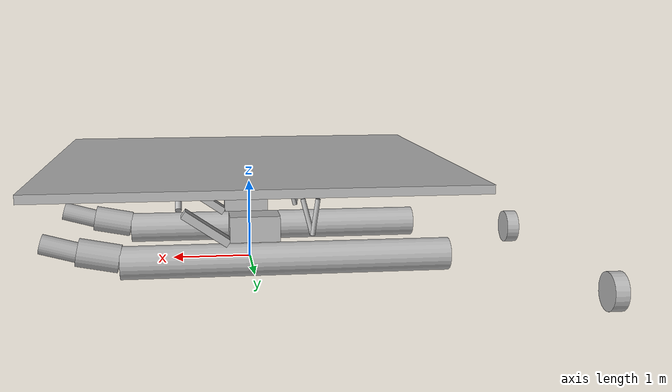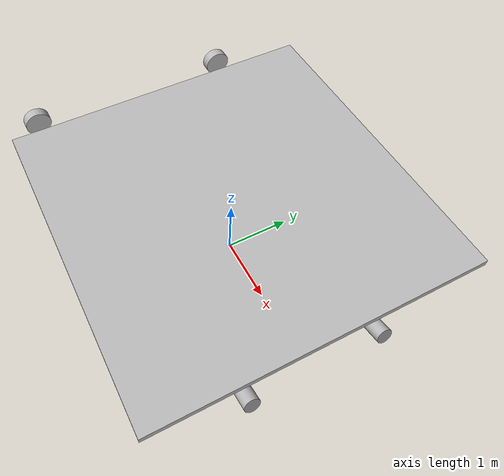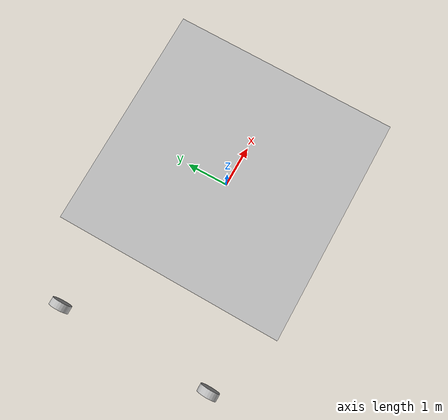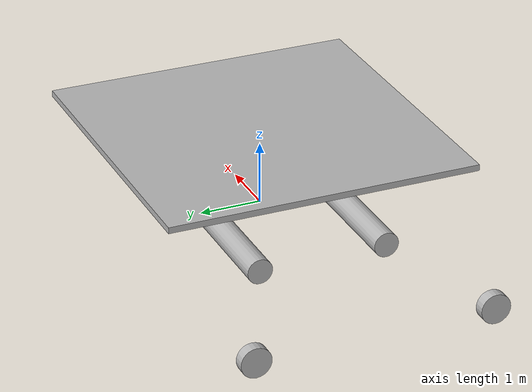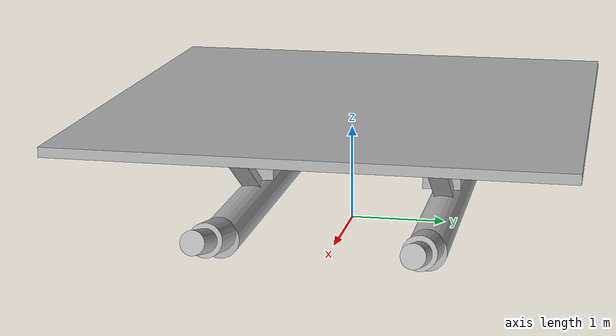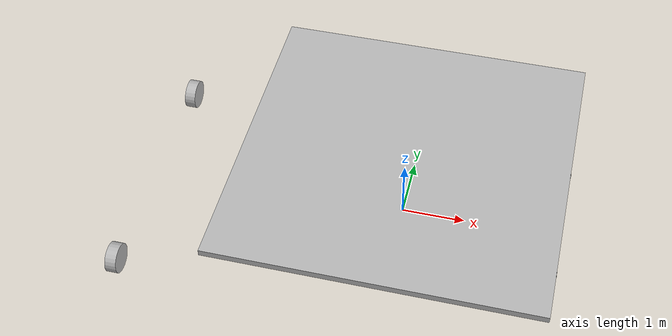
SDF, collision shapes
<sdf version='1.6'>
  <model name='boat'>
    <link name='base_link'>
      <pose>0 0 0 0 -0 0</pose>
      <inertial>
        <pose >0 0 0.124229 0 -0 0</pose>
        <mass>227</mass>
        <inertia>
          <ixx>181.42</ixx>
          <ixy>0</ixy>
          <ixz>0</ixz>
          <iyy>408.203</iyy>
          <iyz>0</iyz>
          <izz>495.037</izz>
        </inertia>
      </inertial>
      <collision name='base_link_fixed_joint_lump__left_float_collision'>
        <pose >-0.4 1.03 0.2 3.14159 1.57079 3.14159</pose>
        <geometry>
          <cylinder>
            <length>4</length>
            <radius>0.2</radius>
          </cylinder>
        </geometry>
      </collision>
      <collision name='base_link_fixed_joint_lump__left_mid_float_collision_1'>
        <pose>1.85 1.03 0.3 0 1.38 0</pose>
        <geometry>
          <cylinder>
            <length>0.5</length>
            <radius>0.17</radius>
          </cylinder>
        </geometry>
      </collision>
      <collision name='base_link_fixed_joint_lump__left_front_float_collision_2'>
        <pose>2.3 1.03 0.4 0 1.3 0</pose>
        <geometry>
          <cylinder>
            <length>0.45</length>
            <radius>0.12</radius>
          </cylinder>
        </geometry>
      </collision>
      <collision name='base_link_fixed_joint_lump__front_left_beam_lower_collision_3'>
        <pose>0.9 0.85 1 0.78 -0 0</pose>
        <geometry>
          <cylinder>
            <length>0.5</length>
            <radius>0.04</radius>
          </cylinder>
        </geometry>
      </collision>
      <collision name='base_link_fixed_joint_lump__front_left_beam_upper_collision_4'>
        <pose>0.9 0.6 1.18 1.35 -0 0</pose>
        <geometry>
          <cylinder>
            <length>0.2</length>
            <radius>0.04</radius>
          </cylinder>
        </geometry>
      </collision>
      <collision name='base_link_fixed_joint_lump__mid_left_beam_lower_collision_5'>
        <pose>-0.65 0.99 0.7 0.1 0.25 0</pose>
        <geometry>
          <cylinder>
            <length>0.45</length>
            <radius>0.03</radius>
          </cylinder>
        </geometry>
      </collision>
      <collision name='base_link_fixed_joint_lump__mid_left_beam_medium_collision_6'>
        <pose>-0.57 0.87 1.05 0.75 0.25 0</pose>
        <geometry>
          <cylinder>
            <length>0.32</length>
            <radius>0.03</radius>
          </cylinder>
        </geometry>
      </collision>
      <collision name='base_link_fixed_joint_lump__mid_left_beam_upper_collision_7'>
        <pose>-0.55 0.65 1.17 1.35 0.25 0</pose>
        <geometry>
          <cylinder>
            <length>0.3</length>
            <radius>0.03</radius>
          </cylinder>
        </geometry>
      </collision>
      <collision name='base_link_fixed_joint_lump__rear_left_beam_lower_collision_8'>
        <pose>-0.74 1.03 0.7 0 -0.15 0</pose>
        <geometry>
          <cylinder>
            <length>0.45</length>
            <radius>0.03</radius>
          </cylinder>
        </geometry>
      </collision>
      <collision name='base_link_fixed_joint_lump__rear_left_beam_medium_collision_9'>
        <pose>-0.79 0.91 1.05 0.75 -0.15 -0</pose>
        <geometry>
          <cylinder>
            <length>0.32</length>
            <radius>0.03</radius>
          </cylinder>
        </geometry>
      </collision>
      <collision name='base_link_fixed_joint_lump__rear_left_beam_upper_collision_10'>
        <pose>-0.81 0.67 1.18 1.45 -0.15 0</pose>
        <geometry>
          <cylinder>
            <length>0.3</length>
            <radius>0.03</radius>
          </cylinder>
        </geometry>
      </collision>
      <collision name='base_link_fixed_joint_lump__left_joint_collision_11'>
        <pose>0.58 1.03 0.6 0 -0.6 0</pose>
        <geometry>
          <box>
            <size>0.65 0.2 0.1</size>
          </box>
        </geometry>
      </collision>
      <collision name='base_link_fixed_joint_lump__right_float_collision_12'>
        <pose>-0.4 -1.03 0.2 3.14159 1.57079 3.14159</pose>
        <geometry>
          <cylinder>
            <length>4</length>
            <radius>0.2</radius>
          </cylinder>
        </geometry>
      </collision>
      <collision name='base_link_fixed_joint_lump__right_mid_float_collision_13'>
        <pose>1.85 -1.03 0.3 0 1.38 0</pose>
        <geometry>
          <cylinder>
            <length>0.5</length>
            <radius>0.17</radius>
          </cylinder>
        </geometry>
      </collision>
      <collision name='base_link_fixed_joint_lump__right_front_float_collision_14'>
        <pose>2.3 -1.03 0.4 0 1.3 0</pose>
        <geometry>
          <cylinder>
            <length>0.45</length>
            <radius>0.12</radius>
          </cylinder>
        </geometry>
      </collision>
      <collision name='base_link_fixed_joint_lump__front_right_beam_lower_collision_15'>
        <pose>0.9 -0.85 1 -0.78 0 0</pose>
        <geometry>
          <cylinder>
            <length>0.5</length>
            <radius>0.04</radius>
          </cylinder>
        </geometry>
      </collision>
      <collision name='base_link_fixed_joint_lump__front_right_beam_upper_collision_16'>
        <pose>0.9 -0.6 1.18 -1.35 0 0</pose>
        <geometry>
          <cylinder>
            <length>0.2</length>
            <radius>0.04</radius>
          </cylinder>
        </geometry>
      </collision>
      <collision name='base_link_fixed_joint_lump__mid_right_beam_lower_collision_17'>
        <pose>-0.65 -0.99 0.7 -0.1 0.25 0</pose>
        <geometry>
          <cylinder>
            <length>0.45</length>
            <radius>0.03</radius>
          </cylinder>
        </geometry>
      </collision>
      <collision name='base_link_fixed_joint_lump__mid_right_beam_medium_collision_18'>
        <pose>-0.57 -0.87 1.05 -0.75 0.25 0</pose>
        <geometry>
          <cylinder>
            <length>0.32</length>
            <radius>0.03</radius>
          </cylinder>
        </geometry>
      </collision>
      <collision name='base_link_fixed_joint_lump__mid_right_beam_upper_collision_19'>
        <pose>-0.55 -0.65 1.17 -1.35 0.25 0</pose>
        <geometry>
          <cylinder>
            <length>0.3</length>
            <radius>0.03</radius>
          </cylinder>
        </geometry>
      </collision>
      <collision name='base_link_fixed_joint_lump__rear_right_beam_lower_collision_20'>
        <pose>-0.74 -1.03 0.7 0 -0.15 0</pose>
        <geometry>
          <cylinder>
            <length>0.45</length>
            <radius>0.03</radius>
          </cylinder>
        </geometry>
      </collision>
      <collision name='base_link_fixed_joint_lump__rear_right_beam_medium_collision_21'>
        <pose>-0.79 -0.91 1.05 -0.75 -0.15 0</pose>
        <geometry>
          <cylinder>
            <length>0.32</length>
            <radius>0.03</radius>
          </cylinder>
        </geometry>
      </collision>
      <collision name='base_link_fixed_joint_lump__rear_right_beam_upper_collision_22'>
        <pose>-0.81 -0.67 1.18 -1.45 -0.15 0</pose>
        <geometry>
          <cylinder>
            <length>0.3</length>
            <radius>0.03</radius>
          </cylinder>
        </geometry>
      </collision>
      <collision name='base_link_fixed_joint_lump__right_joint_collision_23'>
        <pose>0.58 -1.03 0.6 0 -0.6 0</pose>
        <geometry>
          <box>
            <size>0.65 0.2 0.1</size>
          </box>
        </geometry>
      </collision>
      <collision name='base_link_fixed_joint_lump__top_base_collision_24'>
        <pose>0 0 1.25 0 -0 0</pose>
        <geometry>
          <box>
            <size>5 5 0.1</size>
          </box>
        </geometry>
      </collision>
      <collision name='base_link_fixed_joint_lump__left_battery_collision_collision_25'>
        <pose>0 1 0.6 0 -0 0</pose>
        <geometry>
          <box>
            <size>0.6 0.4 0.31</size>
          </box>
        </geometry>
      </collision>
      <collision name='base_link_fixed_joint_lump__right_battery_collision_collision_26'>
        <pose>0 -1 0.6 0 -0 0</pose>
        <geometry>
          <box>
            <size>0.6 0.4 0.31</size>
          </box>
        </geometry>
      </collision>
      <visual name='base_link_fixed_joint_lump__dummy_link_visual'>
        <pose>-2.5 0 0 0 0 3.14159</pose>
        <geometry>
          <mesh>
            <scale>0.10 0.10 0.10</scale>
            <uri>model://ida/meshes/ida3.dae</uri>
          </mesh>
        </geometry>
      </visual>
      <visual name='right_engine_link_visual'>
        <pose>-4.0 -1.0 0.318237 0 -0 0</pose>
        <geometry>
          <mesh>
            <scale>1 1 1</scale>
            <uri>model://ida/meshes//engine.dae</uri>
          </mesh>
        </geometry>
      </visual>
      <visual name='left_engine_link_visual'>
        <pose>-4.0 1.0 0.318237 0 -0 0</pose>
        <geometry>
          <mesh>
            <scale>1 1 1</scale>
            <uri>model://ida/meshes//engine.dae</uri>
          </mesh>
        </geometry>
      </visual>
    </link>
    <link name='left_propeller_link'>
      <pose>-4.2 1.9 -0.191134 0 1.57079 0</pose>
      <inertial>
        <pose>0 0 0 0 -0 0</pose>
        <mass>0.5</mass>
        <inertia>
          <ixx>0.008545</ixx>
          <ixy>0</ixy>
          <ixz>0</ixz>
          <iyy>0.008545</iyy>
          <iyz>0</iyz>
          <izz>0.0144</izz>
        </inertia>
      </inertial>
      <collision name='left_propeller_link_fixed_joint_lump__left_propeller_collision_collision'>
        <pose>-0.08 0 0 3.14159 0.0 3.14159</pose>
        <geometry>
          <cylinder>
            <length>0.18</length>
            <radius>0.24</radius>
          </cylinder>
        </geometry>
      </collision>
      <visual name='left_propeller_link_visual'>
        <pose>0 -1 0 0 -1.57079 0</pose>
        <geometry>
          <mesh>
            <scale>1 1 1</scale>
            <uri>model://ida/meshes/propeller.dae</uri>
          </mesh>
        </geometry>
      </visual>
    </link>
    <joint name='left_engine_propeller_joint' type='revolute'>
      <child>left_propeller_link</child>
      <parent>base_link</parent>
      <axis>
        <xyz>1 0 0</xyz>
        <limit>
          <lower>-1e+16</lower>
          <upper>1e+16</upper>
        </limit>
        <dynamics>
          <spring_reference>0</spring_reference>
          <spring_stiffness>0</spring_stiffness>
        </dynamics>
        <use_parent_model_frame>1</use_parent_model_frame>
      </axis>
    </joint>
    <link name='right_propeller_link'>
      <pose>-4.2 -1.9 -0.191134 0 1.57079 0</pose>
      <inertial>
        <pose>0 0 0 0 -0 0</pose>
        <mass>0.5</mass>
        <inertia>
          <ixx>0.008545</ixx>
          <ixy>0</ixy>
          <ixz>0</ixz>
          <iyy>0.008545</iyy>
          <iyz>0</iyz>
          <izz>0.0144</izz>
        </inertia>
      </inertial>
      <collision name='right_propeller_link_fixed_joint_lump__right_propeller_collision_collision'>
        <pose>-0.08 0 0 3.14159 0.0 3.14159</pose>
        <geometry>
          <cylinder>
            <length>0.18</length>
            <radius>0.24</radius>
          </cylinder>
        </geometry>
      </collision>
      <visual name='right_propeller_link_visual'>
        <pose>0 1 0 0 -1.57079 0</pose>
        <geometry>
          <mesh>
            <scale>1 1 1</scale>
            <uri>model://ida/meshes/propeller.dae</uri>
          </mesh>
        </geometry>
      </visual>
    </link>

    <joint name='right_engine_propeller_joint' type='revolute'>
      <child>right_propeller_link</child>
      <parent>base_link</parent>
      <axis>
        <xyz>1 0 0</xyz>
        <limit>
          <lower>-1e+16</lower>
          <upper>1e+16</upper>
        </limit>
        <dynamics>
          <spring_reference>0</spring_reference>
          <spring_stiffness>0</spring_stiffness>
        </dynamics>
        <use_parent_model_frame>1</use_parent_model_frame>
      </axis>
    </joint>

    <plugin name='usv_dynamics_wamv_dynamics_plugin' filename='libgazebo_usv_dynamics_plugin.so'>
      <bodyName>base_link</bodyName>
      <waterLevel>0</waterLevel>
      <waterDensity>997.8</waterDensity>
      <xDotU>0.0</xDotU>
      <yDotV>0.0</yDotV>
      <nDotR>0.0</nDotR>
      <xU>51.3</xU>
      <xUU>72.4</xUU>
      <yV>40.0</yV>
      <yVV>0.0</yVV>
      <zW>500.0</zW>
      <kP>50.0</kP>
      <mQ>50.0</mQ>
      <nR>400.0</nR>
      <nRR>0.0</nRR>
      <hullRadius>0.213</hullRadius>
      <boatWidth>2.4</boatWidth>
      <boatLength>4.9</boatLength>
      <length_n>2</length_n>
      <wave_model>ocean_waves</wave_model>
    </plugin>

    <link name='imu_link'>
      <pose>0 0 0 0 0 0</pose>
      <inertial>
        <pose>0 0 0 0 0 0</pose>
        <mass>0.015</mass>
        <inertia>
          <ixx>1e-05</ixx>
          <ixy>0</ixy>
          <ixz>0</ixz>
          <iyy>1e-05</iyy>
          <iyz>0</iyz>
          <izz>1e-05</izz>
        </inertia>
      </inertial>
      <sensor name="imu_sensor" type="imu">
        <pose>0 0 0 3.141593 0 0</pose>
        <always_on>1</always_on>
        <update_rate>1000.0</update_rate>
      </sensor>
    </link>
    <joint name='imu_joint' type='revolute'>
      <child>imu_link</child>
      <parent>base_link</parent>
      <axis>
        <xyz>1 0 0</xyz>
        <limit>
          <lower>0</lower>
          <upper>0</upper>
          <effort>0</effort>
          <velocity>0</velocity>
        </limit>
        <dynamics>
          <damping>0.7</damping>
        </dynamics>
        <use_parent_model_frame>1</use_parent_model_frame>
      </axis>
    </joint>

    <plugin name="ArduCopter_Plugin" filename="libArduPilotPlugin.so">
      <fdm_addr>127.0.0.1</fdm_addr>
      <fdm_port_in>9002</fdm_port_in>
      <fdm_port_out>9003</fdm_port_out>
      <!--
          Require by APM :
          Only change model and gazebo from XYZ to XY-Z coordinates
      -->
      <modelXYZToAirplaneXForwardZDown>0 0 0 3.141593 0 0</modelXYZToAirplaneXForwardZDown>
      <gazeboXYZToNED>0 0 0 3.141593 0 0</gazeboXYZToNED>
      <imuName>boat::imu_link::imu_sensor</imuName>
      <connectionTimeoutMaxCount>5</connectionTimeoutMaxCount>
      <!--
          incoming control command [0, 1]
          so offset it by 0 to get [0, 1]
          and divide max target by 1.
          offset = 0
          multiplier = 838 max rpm / 1 = 838
        -->
      <control channel="0">
        <type>VELOCITY</type>
        <offset>-0.5</offset>
        <p_gain>1</p_gain>
        <i_gain>0</i_gain>
        <d_gain>0</d_gain>
        <i_max>0</i_max>
        <i_min>0</i_min>
        <cmd_max>10</cmd_max>
        <cmd_min>-10</cmd_min>
        <jointName>left_engine_propeller_joint</jointName>
        <multiplier>-100</multiplier>
      </control>
      <control channel="2">
        <type>VELOCITY</type>
        <offset>-0.5</offset>
        <p_gain>1</p_gain>
        <i_gain>0</i_gain>
        <d_gain>0</d_gain>
        <i_max>0</i_max>
        <i_min>0</i_min>
        <cmd_max>10</cmd_max>
        <cmd_min>-10</cmd_min>
        <jointName>right_engine_propeller_joint</jointName>
        <multiplier>-100</multiplier>
      </control>

    </plugin>
    <plugin name="rotor_1_blade_1" filename="libLiftDragPlugin.so">
      <a0>2</a0>
      <alpha_stall>4</alpha_stall>
      <cla>10.2500</cla>
      <cda>0.10</cda>
      <cma>0.00</cma>
      <cla_stall>-0.025</cla_stall>
      <cda_stall>0.0</cda_stall>
      <cma_stall>0.0</cma_stall>
      <area>0.002</area>
      <air_density>997</air_density>
      <cp>0.084 0 0</cp>
      <forward>0 1 0</forward>
      <upward>0 0 1</upward>
      <link_name>right_propeller_link</link_name>
    </plugin>
    <plugin name="rotor_1_blade_2" filename="libLiftDragPlugin.so">
      <a0>2</a0>
      <alpha_stall>4</alpha_stall>
      <cla>10.2500</cla>
      <cda>0.10</cda>
      <cma>0.00</cma>
      <cla_stall>-0.025</cla_stall>
      <cda_stall>0.0</cda_stall>
      <cma_stall>0.0</cma_stall>
      <area>0.002</area>
      <air_density>997</air_density>
      <cp>-0.084 0 0</cp>
      <forward>0 -1 0</forward>
      <upward>0 0 1</upward>
      <link_name>left_propeller_link</link_name>
    </plugin>

  </model>
</sdf>
